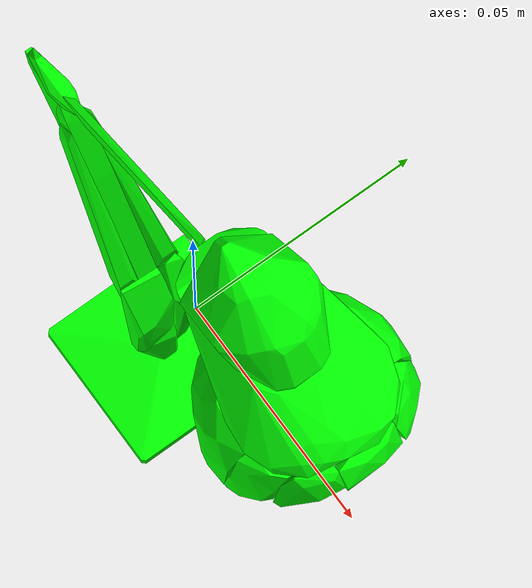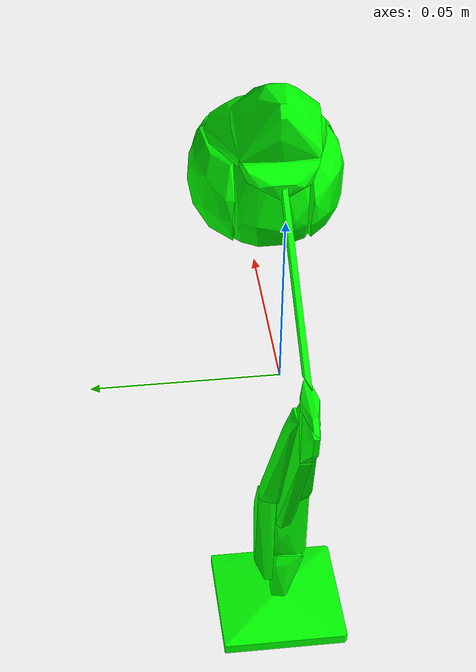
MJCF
<mujoco model="shapenetsem4">
  <asset>
    <mesh file="meshes/shapenetsem4/shapenetsem4_0.stl" name="shapenetsem4_0" scale="1 1 1"/>
    <mesh file="meshes/shapenetsem4/shapenetsem4_1.stl" name="shapenetsem4_1" scale="1 1 1"/>
    <mesh file="meshes/shapenetsem4/shapenetsem4_2.stl" name="shapenetsem4_2" scale="1 1 1"/>
    <mesh file="meshes/shapenetsem4/shapenetsem4_3.stl" name="shapenetsem4_3" scale="1 1 1"/>
    <mesh file="meshes/shapenetsem4/shapenetsem4_4.stl" name="shapenetsem4_4" scale="1 1 1"/>
    <mesh file="meshes/shapenetsem4/shapenetsem4_5.stl" name="shapenetsem4_5" scale="1 1 1"/>
    <mesh file="meshes/shapenetsem4/shapenetsem4_6.stl" name="shapenetsem4_6" scale="1 1 1"/>
    <mesh file="meshes/shapenetsem4/shapenetsem4_7.stl" name="shapenetsem4_7" scale="1 1 1"/>
    <mesh file="meshes/shapenetsem4/shapenetsem4_8.stl" name="shapenetsem4_8" scale="1 1 1"/>
    <mesh file="meshes/shapenetsem4/shapenetsem4_9.stl" name="shapenetsem4_9" scale="1 1 1"/>
    <mesh file="meshes/shapenetsem4/shapenetsem4_10.stl" name="shapenetsem4_10" scale="1 1 1"/>
    <mesh file="meshes/shapenetsem4/shapenetsem4_11.stl" name="shapenetsem4_11" scale="1 1 1"/>
    <mesh file="meshes/shapenetsem4/shapenetsem4_12.stl" name="shapenetsem4_12" scale="1 1 1"/>
    <mesh file="meshes/shapenetsem4/shapenetsem4_13.stl" name="shapenetsem4_13" scale="1 1 1"/>
    <mesh file="meshes/shapenetsem4/shapenetsem4_14.stl" name="shapenetsem4_14" scale="1 1 1"/>
    <mesh file="meshes/shapenetsem4/shapenetsem4_15.stl" name="shapenetsem4_15" scale="1 1 1"/>
    <mesh file="meshes/shapenetsem4/shapenetsem4_16.stl" name="shapenetsem4_16" scale="1 1 1"/>
    <mesh file="meshes/shapenetsem4/shapenetsem4_17.stl" name="shapenetsem4_17" scale="1 1 1"/>
    <mesh file="meshes/shapenetsem4/shapenetsem4_18.stl" name="shapenetsem4_18" scale="1 1 1"/>
    <mesh file="meshes/shapenetsem4/shapenetsem4_19.stl" name="shapenetsem4_19" scale="1 1 1"/>
  </asset>
  <worldbody>
    <body>
      <body name="collision">
        <geom pos="0 0 0" mesh="shapenetsem4_0" type="mesh" solimp="0.998 0.998 0.001" solref="0.001 1" density="100" friction="0.95 0.3 0.1" rgba="0 1 0 1" group="1" condim="4"/>
        <geom pos="0 0 0" mesh="shapenetsem4_1" type="mesh" solimp="0.998 0.998 0.001" solref="0.001 1" density="100" friction="0.95 0.3 0.1" rgba="0 1 0 1" group="1" condim="4"/>
        <geom pos="0 0 0" mesh="shapenetsem4_2" type="mesh" solimp="0.998 0.998 0.001" solref="0.001 1" density="100" friction="0.95 0.3 0.1" rgba="0 1 0 1" group="1" condim="4"/>
        <geom pos="0 0 0" mesh="shapenetsem4_3" type="mesh" solimp="0.998 0.998 0.001" solref="0.001 1" density="100" friction="0.95 0.3 0.1" rgba="0 1 0 1" group="1" condim="4"/>
        <geom pos="0 0 0" mesh="shapenetsem4_4" type="mesh" solimp="0.998 0.998 0.001" solref="0.001 1" density="100" friction="0.95 0.3 0.1" rgba="0 1 0 1" group="1" condim="4"/>
        <geom pos="0 0 0" mesh="shapenetsem4_5" type="mesh" solimp="0.998 0.998 0.001" solref="0.001 1" density="100" friction="0.95 0.3 0.1" rgba="0 1 0 1" group="1" condim="4"/>
        <geom pos="0 0 0" mesh="shapenetsem4_6" type="mesh" solimp="0.998 0.998 0.001" solref="0.001 1" density="100" friction="0.95 0.3 0.1" rgba="0 1 0 1" group="1" condim="4"/>
        <geom pos="0 0 0" mesh="shapenetsem4_7" type="mesh" solimp="0.998 0.998 0.001" solref="0.001 1" density="100" friction="0.95 0.3 0.1" rgba="0 1 0 1" group="1" condim="4"/>
        <geom pos="0 0 0" mesh="shapenetsem4_8" type="mesh" solimp="0.998 0.998 0.001" solref="0.001 1" density="100" friction="0.95 0.3 0.1" rgba="0 1 0 1" group="1" condim="4"/>
        <geom pos="0 0 0" mesh="shapenetsem4_9" type="mesh" solimp="0.998 0.998 0.001" solref="0.001 1" density="100" friction="0.95 0.3 0.1" rgba="0 1 0 1" group="1" condim="4"/>
        <geom pos="0 0 0" mesh="shapenetsem4_10" type="mesh" solimp="0.998 0.998 0.001" solref="0.001 1" density="100" friction="0.95 0.3 0.1" rgba="0 1 0 1" group="1" condim="4"/>
        <geom pos="0 0 0" mesh="shapenetsem4_11" type="mesh" solimp="0.998 0.998 0.001" solref="0.001 1" density="100" friction="0.95 0.3 0.1" rgba="0 1 0 1" group="1" condim="4"/>
        <geom pos="0 0 0" mesh="shapenetsem4_12" type="mesh" solimp="0.998 0.998 0.001" solref="0.001 1" density="100" friction="0.95 0.3 0.1" rgba="0 1 0 1" group="1" condim="4"/>
        <geom pos="0 0 0" mesh="shapenetsem4_13" type="mesh" solimp="0.998 0.998 0.001" solref="0.001 1" density="100" friction="0.95 0.3 0.1" rgba="0 1 0 1" group="1" condim="4"/>
        <geom pos="0 0 0" mesh="shapenetsem4_14" type="mesh" solimp="0.998 0.998 0.001" solref="0.001 1" density="100" friction="0.95 0.3 0.1" rgba="0 1 0 1" group="1" condim="4"/>
        <geom pos="0 0 0" mesh="shapenetsem4_15" type="mesh" solimp="0.998 0.998 0.001" solref="0.001 1" density="100" friction="0.95 0.3 0.1" rgba="0 1 0 1" group="1" condim="4"/>
        <geom pos="0 0 0" mesh="shapenetsem4_16" type="mesh" solimp="0.998 0.998 0.001" solref="0.001 1" density="100" friction="0.95 0.3 0.1" rgba="0 1 0 1" group="1" condim="4"/>
        <geom pos="0 0 0" mesh="shapenetsem4_17" type="mesh" solimp="0.998 0.998 0.001" solref="0.001 1" density="100" friction="0.95 0.3 0.1" rgba="0 1 0 1" group="1" condim="4"/>
        <geom pos="0 0 0" mesh="shapenetsem4_18" type="mesh" solimp="0.998 0.998 0.001" solref="0.001 1" density="100" friction="0.95 0.3 0.1" rgba="0 1 0 1" group="1" condim="4"/>
        <geom pos="0 0 0" mesh="shapenetsem4_19" type="mesh" solimp="0.998 0.998 0.001" solref="0.001 1" density="100" friction="0.95 0.3 0.1" rgba="0 1 0 1" group="1" condim="4"/>
      </body>
      <body name="visual">
        <geom pos="0 0 0" mesh="shapenetsem4_0" type="mesh" rgba="0 1 0 1" conaffinity="0" contype="0" group="0" mass="0.0001"/>
        <geom pos="0 0 0" mesh="shapenetsem4_1" type="mesh" rgba="0 1 0 1" conaffinity="0" contype="0" group="0" mass="0.0001"/>
        <geom pos="0 0 0" mesh="shapenetsem4_2" type="mesh" rgba="0 1 0 1" conaffinity="0" contype="0" group="0" mass="0.0001"/>
        <geom pos="0 0 0" mesh="shapenetsem4_3" type="mesh" rgba="0 1 0 1" conaffinity="0" contype="0" group="0" mass="0.0001"/>
        <geom pos="0 0 0" mesh="shapenetsem4_4" type="mesh" rgba="0 1 0 1" conaffinity="0" contype="0" group="0" mass="0.0001"/>
        <geom pos="0 0 0" mesh="shapenetsem4_5" type="mesh" rgba="0 1 0 1" conaffinity="0" contype="0" group="0" mass="0.0001"/>
        <geom pos="0 0 0" mesh="shapenetsem4_6" type="mesh" rgba="0 1 0 1" conaffinity="0" contype="0" group="0" mass="0.0001"/>
        <geom pos="0 0 0" mesh="shapenetsem4_7" type="mesh" rgba="0 1 0 1" conaffinity="0" contype="0" group="0" mass="0.0001"/>
        <geom pos="0 0 0" mesh="shapenetsem4_8" type="mesh" rgba="0 1 0 1" conaffinity="0" contype="0" group="0" mass="0.0001"/>
        <geom pos="0 0 0" mesh="shapenetsem4_9" type="mesh" rgba="0 1 0 1" conaffinity="0" contype="0" group="0" mass="0.0001"/>
        <geom pos="0 0 0" mesh="shapenetsem4_10" type="mesh" rgba="0 1 0 1" conaffinity="0" contype="0" group="0" mass="0.0001"/>
        <geom pos="0 0 0" mesh="shapenetsem4_11" type="mesh" rgba="0 1 0 1" conaffinity="0" contype="0" group="0" mass="0.0001"/>
        <geom pos="0 0 0" mesh="shapenetsem4_12" type="mesh" rgba="0 1 0 1" conaffinity="0" contype="0" group="0" mass="0.0001"/>
        <geom pos="0 0 0" mesh="shapenetsem4_13" type="mesh" rgba="0 1 0 1" conaffinity="0" contype="0" group="0" mass="0.0001"/>
        <geom pos="0 0 0" mesh="shapenetsem4_14" type="mesh" rgba="0 1 0 1" conaffinity="0" contype="0" group="0" mass="0.0001"/>
        <geom pos="0 0 0" mesh="shapenetsem4_15" type="mesh" rgba="0 1 0 1" conaffinity="0" contype="0" group="0" mass="0.0001"/>
        <geom pos="0 0 0" mesh="shapenetsem4_16" type="mesh" rgba="0 1 0 1" conaffinity="0" contype="0" group="0" mass="0.0001"/>
        <geom pos="0 0 0" mesh="shapenetsem4_17" type="mesh" rgba="0 1 0 1" conaffinity="0" contype="0" group="0" mass="0.0001"/>
        <geom pos="0 0 0" mesh="shapenetsem4_18" type="mesh" rgba="0 1 0 1" conaffinity="0" contype="0" group="0" mass="0.0001"/>
        <geom pos="0 0 0" mesh="shapenetsem4_19" type="mesh" rgba="0 1 0 1" conaffinity="0" contype="0" group="0" mass="0.0001"/>
      </body>
      <site rgba="0 0 0 0" size="0.005" pos="0 0 -0.06" name="bottom_site"/>
      <site rgba="0 0 0 0" size="0.005" pos="0 0 0.04" name="top_site"/>
      <site rgba="0 0 0 0" size="0.005" pos="0.025 0.025 0" name="horizontal_radius_site"/>
    </body>
  </worldbody>
</mujoco>
